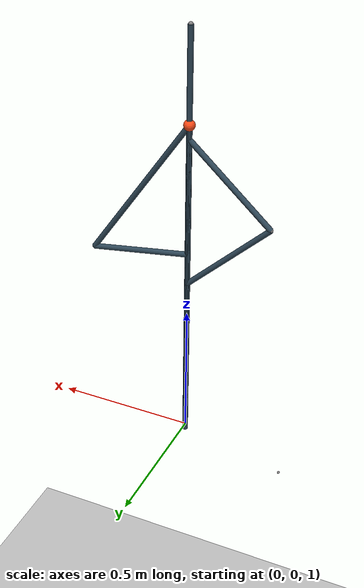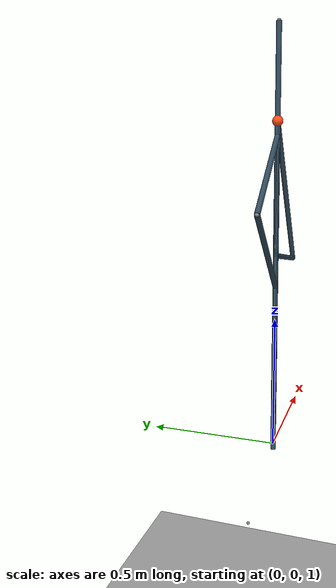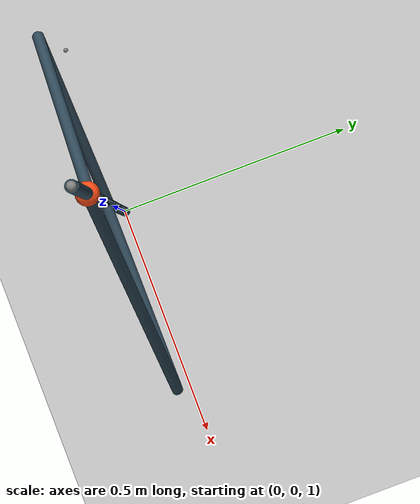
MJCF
<mujoco model="Strandbeest_SingleLeg">

  <compiler angle="radian" inertiafromgeom="true" autolimits="true"/>

    <option gravity="0 0 -9.81"
      timestep="0.0005"
      integrator="implicitfast"
      iterations="800"
      solver="Newton"
      tolerance="1e-12"
      noslip_iterations="10"
      noslip_tolerance="1e-10"/>

  <visual>
    <rgba haze="0.15 0.25 0.35 1"/>
  </visual>

  <default>
    <joint damping="0.5" armature="0.005"/>
    <geom contype="0" conaffinity="0" friction="0.8 0.1 0.1" rgba="0.5 0.5 0.5 1" density="500"/>
  </default>

  <asset>
    <material name="col_2F4858" rgba="0.184 0.282 0.345 1"/>
    <material name="orange"    rgba="1.0 0.639 0.098 1"/>
  </asset>

  <worldbody>

    <!-- =================== BASE: crossbar (single world-fixed body) =================== -->
    <body name="crossbar" pos="0 0 0.9">
      <!-- Fixed anchor used by loop_a_c. Equivalent to old bar_a_leg1_site. -->
      <site name="base_leg1_site" pos="-0.38 0 0" size="0.005"/>

      <!-- ── crank_axle: revolves about Y ── -->
      <body name="crank_axle" pos="0 0 0.078">
        <joint name="joint_crossbar_crank" type="hinge" axis="0 1 0" pos="0 0 0"/>

        <!-- ── bar_m: crank arm, phase = 0 ── -->
        <body name="bar_m" pos="0 0 0" euler="0 0 0">
          <geom name="bar_m_geom" type="cylinder" size="0.01 0.075"
                pos="0 0 0.075" material="col_2F4858"/>

          <!-- ── bar_j: first link, hinged at bar_m tip ── -->
          <body name="bar_j" pos="0 0 0.15">
            <joint name="joint_m_j" type="hinge" axis="0 1 0" pos="0 0 0"/>
            <geom name="bar_j_geom" type="cylinder" size="0.01 0.25"
                  pos="0 0 0.25" material="col_2F4858"/>

            <!-- bar_k hinged at bar_j base (pos 0 0 0 in bar_j frame) -->
            <body name="bar_k" pos="0 0 0">
              <joint name="joint_j_k" type="hinge" axis="0 1 0" pos="0 0 0"/>
              <geom name="bar_k_geom" type="cylinder" size="0.01 0.3095"
                    pos="0 0 0.3095" material="col_2F4858"/>

              <!-- bar_c at tip of bar_k -->
              <body name="bar_c" pos="0 0 0.619">
                <joint name="joint_k_c" type="hinge" axis="0 1 0" pos="0 0 0"/>
                <geom name="bar_c_geom" type="cylinder" size="0.01 0.1965"
                      pos="0 0 0.1965" material="col_2F4858"/>
                <!-- Site at the free tip of bar_c -->
                <site name="bar_c_tip" pos="0 0 0.393" size="0.008"/>
              </body>

              <!-- bars_g_h_i: the foot-bearing compound link, also at bar_k tip -->
              <body name="bars_g_h_i" pos="0 0 0.619">
                <joint name="joint_k_i" type="hinge" axis="0 1 0" pos="0 0 0"/>
                <!-- g: vertical strut -->
                <geom name="ghi_g" type="cylinder" size="0.01 0.245"
                      pos="0 0 0.245" material="col_2F4858"/>
                <!-- h: diagonal brace -->
                <geom name="ghi_h" type="cylinder" size="0.01 0.1835"
                      pos="0.1812 0 -0.0291" euler="0 1.73 0" material="col_2F4858"/>
                <!-- i: lower leg strut -->
                <geom name="ghi_i" type="cylinder" size="0.01 0.3285"
                      pos="0.1811 0 0.2159" euler="0 2.5576 0" material="col_2F4858"/>
                <!-- Foot: collision sphere at the bottom -->
                <geom name="foot" type="sphere" size="0.02"
                      pos="0 0 0.49" contype="1" conaffinity="1"
                      rgba="1.0 0.3 0.1 1"/>
                <!-- Site for loop_f_g constraint -->
                <site name="ghi_loopsite" pos="0.3624 0 -0.0582" size="0.008"/>
              </body>
            </body><!-- end bar_k -->

            <!-- bars_b_d_e: triangular link attached partway up bar_j -->
            <body name="bars_b_d_e" pos="0 0 0.50">
              <joint name="joint_j_e" type="hinge" axis="0 1 0" pos="0 0 0"/>
              <!-- b: upper strut -->
              <geom name="bde_b" type="cylinder" size="0.01 0.279"
                    pos="0 0 0.279" material="col_2F4858"/>
              <!-- d: diagonal -->
              <geom name="bde_d" type="cylinder" size="0.01 0.2005"
                    pos="-0.1488 0 0.4236" euler="0 -2.3056 0" material="col_2F4858"/>
              <!-- e: lower diagonal -->
              <geom name="bde_e" type="cylinder" size="0.01 0.2075"
                    pos="-0.1489 0 0.1446" euler="0 -0.8 0" material="col_2F4858"/>
              <!-- Site for loop_b_c constraint -->
              <site name="bde_loopsite" pos="-0.2978 0 0.2892" size="0.008"/>

              <!-- bar_f: final link connecting to the foot assembly -->
              <body name="bar_f" pos="0 0 0.558">
                <joint name="joint_e_f" type="hinge" axis="0 1 0" pos="0 0 0"/>
                <geom name="bar_f_geom" type="cylinder" size="0.01 0.197"
                      pos="0 0 0.197" material="col_2F4858"/>
                <!-- Site at tip of bar_f -->
                <site name="bar_f_tip" pos="0 0 0.394" size="0.008"/>
              </body>
            </body><!-- end bars_b_d_e -->

          </body><!-- end bar_j -->
        </body><!-- end bar_m -->
      </body><!-- end crank_axle -->
    </body><!-- end crossbar -->

    <!-- Ground plane -->
    <geom name="ground" type="plane" size="5 5 0.1" pos="0 0 0"
          rgba="0.75 0.75 0.75 1" contype="1" conaffinity="1"/>

  </worldbody>

  <!-- =================== ACTUATOR =================== -->
  <actuator>
    <!-- Velocity-controlled crank motor -->
    <velocity name="crank_motor"
              joint="joint_crossbar_crank"
              gear="1" kv="200"
              ctrllimited="true" ctrlrange="-20 20"/>
  </actuator>

  <!-- =================== EQUALITY CONSTRAINTS (closed-chain loops) =================== -->
  <equality>
    <connect name="loop_f_g"
             site1="bar_f_tip"    site2="ghi_loopsite"
             solimp="0.99 0.999 0.0001 0.5 2" solref="0.005 1"/>

    <connect name="loop_b_c"
             site1="bde_loopsite" site2="bar_c_tip"
             solimp="0.99 0.999 0.0001 0.5 2" solref="0.005 1"/>

    <connect name="loop_a_c"
             site1="base_leg1_site" site2="bar_c_tip"
             solimp="0.99 0.999 0.0001 0.5 2" solref="0.005 1"/>
  </equality>

  <keyframe>
    <key name="init"
         qpos="0.0  -1.207374  -1.588355  2.347982  -0.620345  -1.346172  -1.127636"/>
  </keyframe>

</mujoco>
